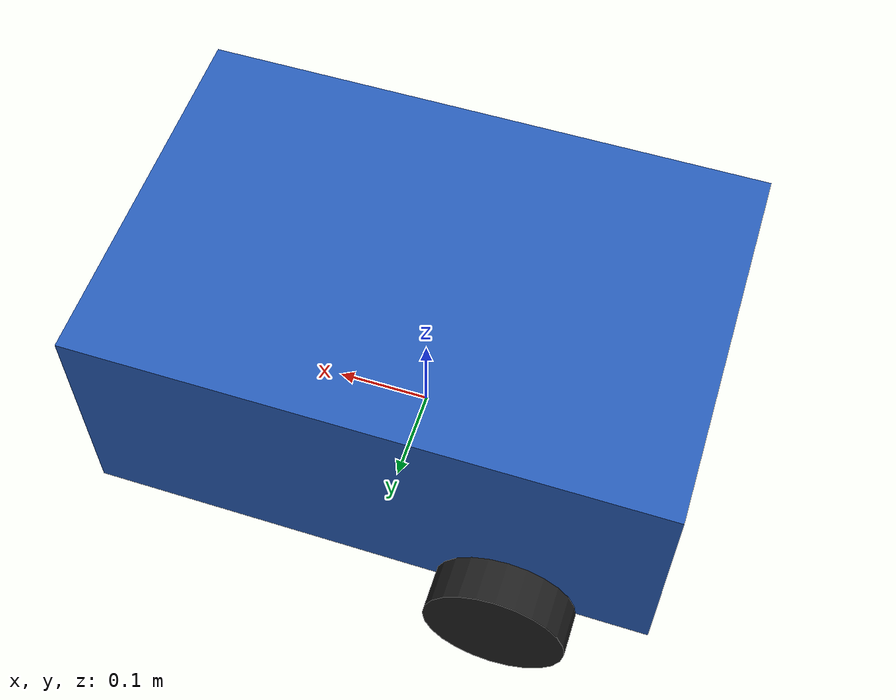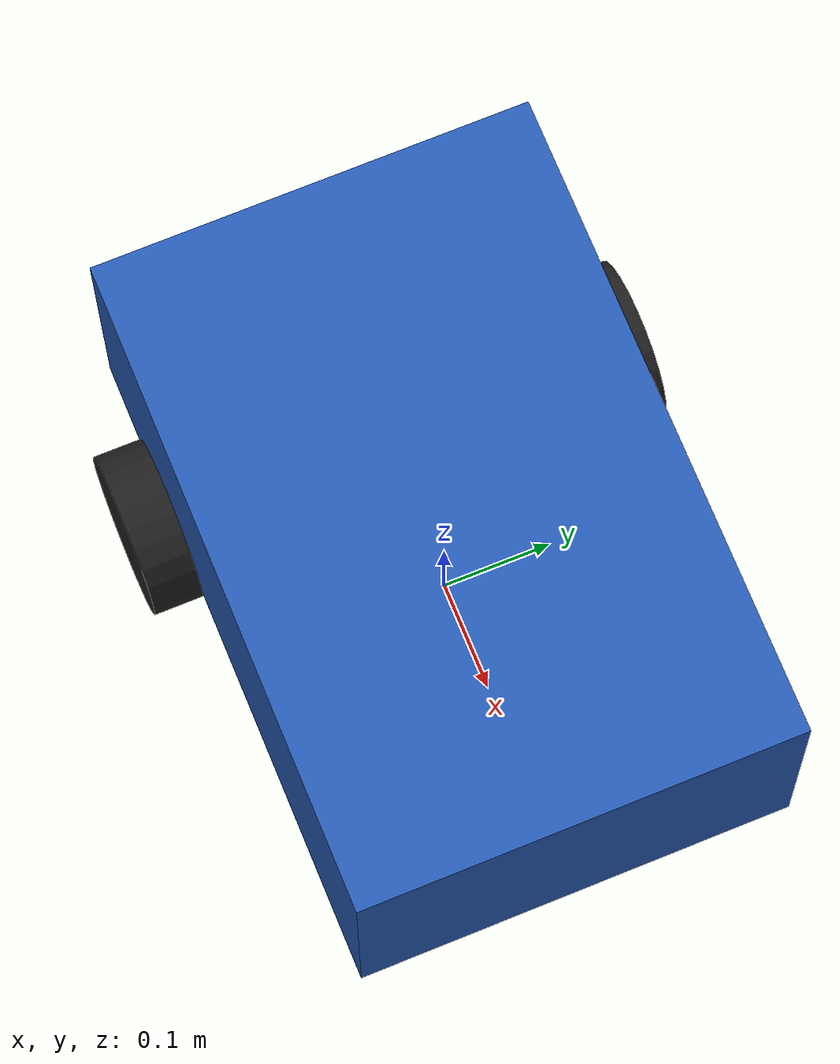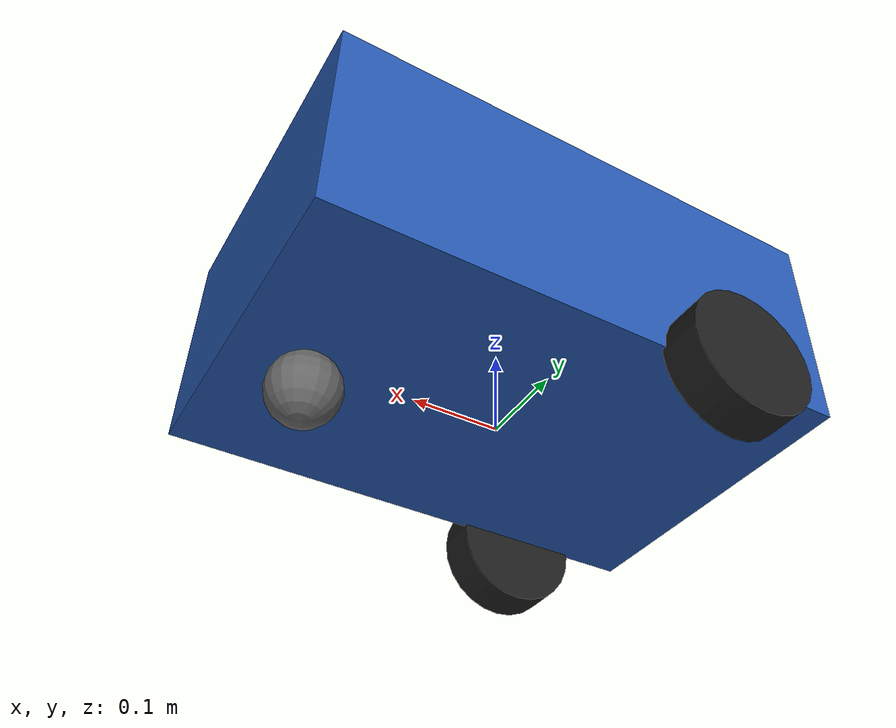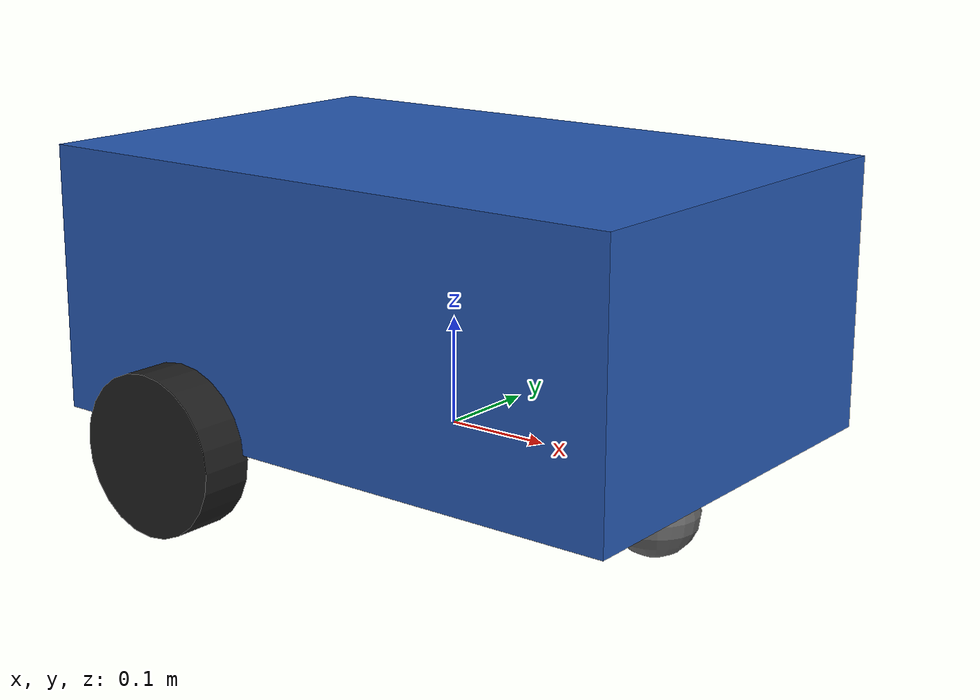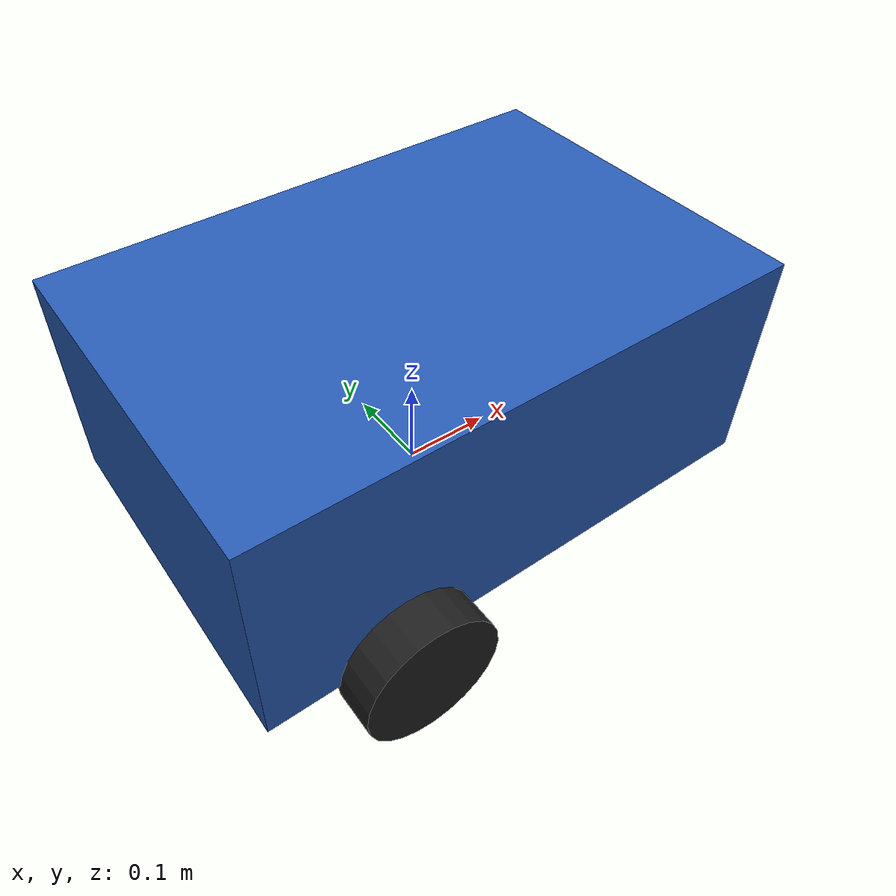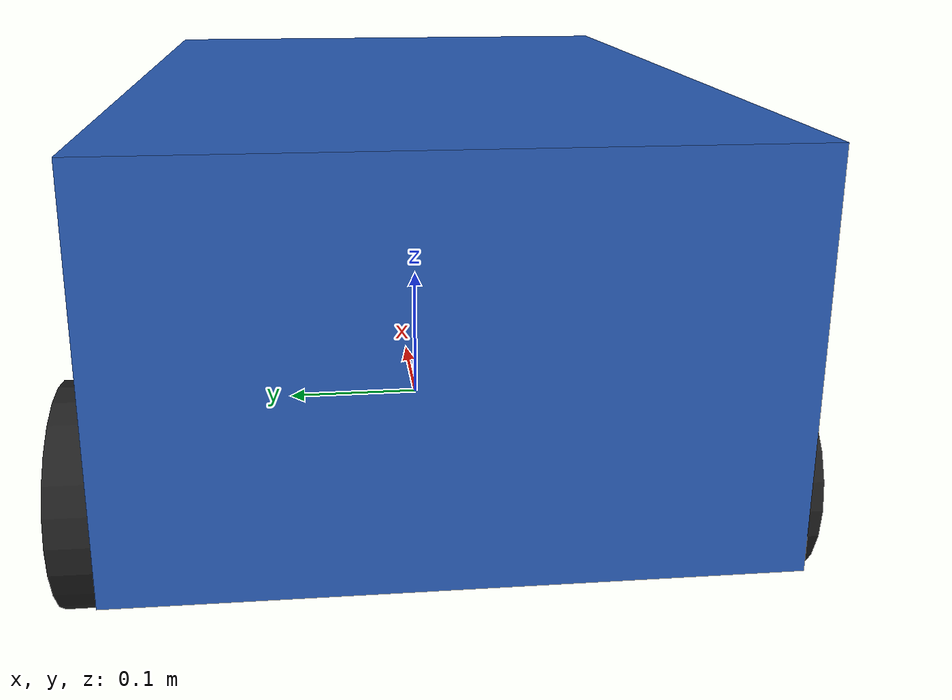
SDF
<?xml version="1.0"?>
<sdf version="1.10">
  <model name="physical_ai_amr">
    <self_collide>false</self_collide>

    <link name="base_link">
      <inertial>
        <pose>0 0 0.13 0 0 0</pose>
        <mass>8.0</mass>
        <inertia>
          <ixx>0.148333</ixx>
          <ixy>0</ixy>
          <ixz>0</ixz>
          <iyy>0.281667</iyy>
          <iyz>0</iyz>
          <izz>0.346667</izz>
        </inertia>
      </inertial>
      <visual name="chassis_visual">
        <pose>0 0 0.13 0 0 0</pose>
        <geometry>
          <box>
            <size>0.6 0.4 0.25</size>
          </box>
        </geometry>
        <material>
          <ambient>0.15 0.35 0.7 1</ambient>
          <diffuse>0.15 0.35 0.7 1</diffuse>
          <specular>0.2 0.2 0.2 1</specular>
        </material>
      </visual>
      <collision name="chassis_collision">
        <pose>0 0 0.13 0 0 0</pose>
        <geometry>
          <box>
            <size>0.6 0.4 0.25</size>
          </box>
        </geometry>
      </collision>
    </link>

    <link name="left_wheel">
      <pose>-0.15 0.22 0 0 0 0</pose>
      <inertial>
        <mass>0.5</mass>
        <inertia>
          <ixx>0.000807</ixx>
          <ixy>0</ixy>
          <ixz>0</ixz>
          <iyy>0.001406</iyy>
          <iyz>0</iyz>
          <izz>0.000807</izz>
        </inertia>
      </inertial>
      <visual name="left_wheel_visual">
        <pose>0 0 0 1.5708 0 0</pose>
        <geometry>
          <cylinder>
            <radius>0.075</radius>
            <length>0.05</length>
          </cylinder>
        </geometry>
        <material>
          <ambient>0.12 0.12 0.12 1</ambient>
          <diffuse>0.12 0.12 0.12 1</diffuse>
        </material>
      </visual>
      <collision name="left_wheel_collision">
        <pose>0 0 0 1.5708 0 0</pose>
        <geometry>
          <cylinder>
            <radius>0.075</radius>
            <length>0.05</length>
          </cylinder>
        </geometry>
        <surface>
          <friction>
            <ode>
              <mu>1.0</mu>
              <mu2>1.0</mu2>
            </ode>
          </friction>
        </surface>
      </collision>
    </link>

    <joint name="left_wheel_joint" type="revolute">
      <parent>base_link</parent>
      <child>left_wheel</child>
      <axis>
        <xyz>0 1 0</xyz>
        <limit>
          <lower>-1.79769e+308</lower>
          <upper>1.79769e+308</upper>
        </limit>
      </axis>
    </joint>

    <link name="right_wheel">
      <pose>-0.15 -0.22 0 0 0 0</pose>
      <inertial>
        <mass>0.5</mass>
        <inertia>
          <ixx>0.000807</ixx>
          <ixy>0</ixy>
          <ixz>0</ixz>
          <iyy>0.001406</iyy>
          <iyz>0</iyz>
          <izz>0.000807</izz>
        </inertia>
      </inertial>
      <visual name="right_wheel_visual">
        <pose>0 0 0 1.5708 0 0</pose>
        <geometry>
          <cylinder>
            <radius>0.075</radius>
            <length>0.05</length>
          </cylinder>
        </geometry>
        <material>
          <ambient>0.12 0.12 0.12 1</ambient>
          <diffuse>0.12 0.12 0.12 1</diffuse>
        </material>
      </visual>
      <collision name="right_wheel_collision">
        <pose>0 0 0 1.5708 0 0</pose>
        <geometry>
          <cylinder>
            <radius>0.075</radius>
            <length>0.05</length>
          </cylinder>
        </geometry>
        <surface>
          <friction>
            <ode>
              <mu>1.0</mu>
              <mu2>1.0</mu2>
            </ode>
          </friction>
        </surface>
      </collision>
    </link>

    <joint name="right_wheel_joint" type="revolute">
      <parent>base_link</parent>
      <child>right_wheel</child>
      <axis>
        <xyz>0 1 0</xyz>
        <limit>
          <lower>-1.79769e+308</lower>
          <upper>1.79769e+308</upper>
        </limit>
      </axis>
    </joint>

    <link name="caster">
      <pose>0.22 0 -0.035 0 0 0</pose>
      <inertial>
        <mass>0.2</mass>
        <inertia>
          <ixx>0.000128</ixx>
          <ixy>0</ixy>
          <ixz>0</ixz>
          <iyy>0.000128</iyy>
          <iyz>0</iyz>
          <izz>0.000128</izz>
        </inertia>
      </inertial>
      <visual name="caster_visual">
        <geometry>
          <sphere>
            <radius>0.04</radius>
          </sphere>
        </geometry>
        <material>
          <ambient>0.4 0.4 0.4 1</ambient>
          <diffuse>0.4 0.4 0.4 1</diffuse>
        </material>
      </visual>
      <collision name="caster_collision">
        <geometry>
          <sphere>
            <radius>0.04</radius>
          </sphere>
        </geometry>
        <surface>
          <friction>
            <ode>
              <mu>0.01</mu>
              <mu2>0.01</mu2>
            </ode>
          </friction>
        </surface>
      </collision>
    </link>

    <joint name="caster_joint" type="fixed">
      <parent>base_link</parent>
      <child>caster</child>
    </joint>

    <plugin filename="gz-sim-diff-drive-system" name="gz::sim::systems::DiffDrive">
      <left_joint>left_wheel_joint</left_joint>
      <right_joint>right_wheel_joint</right_joint>
      <wheel_separation>0.44</wheel_separation>
      <wheel_radius>0.075</wheel_radius>
      <odom_publish_frequency>50</odom_publish_frequency>
      <topic>/cmd_vel</topic>
      <odom_topic>/odom</odom_topic>
      <tf_topic>/tf</tf_topic>
      <frame_id>odom</frame_id>
      <child_frame_id>base_link</child_frame_id>
    </plugin>
  </model>
</sdf>
